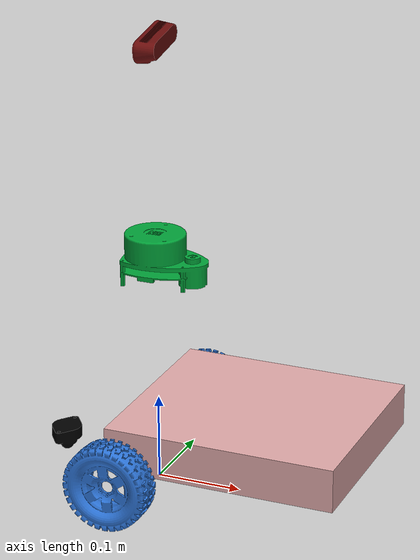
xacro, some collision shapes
<?xml version="1.0"?>
<robot name="my_amr" xmlns:xacro="http://ros.org/wiki/xacro">
  <xacro:arg name="sim" default="false" />
  <xacro:include filename="$(find linorobot2_description)/urdf/my_amr_properties.urdf.xacro" />
  <xacro:include filename="$(find linorobot2_description)/urdf/mech/base.urdf.xacro" />
  <xacro:include filename="$(find linorobot2_description)/urdf/mech/wheel.urdf.xacro" />
  <xacro:include filename="$(find linorobot2_description)/urdf/mech/caster_wheel.urdf.xacro" />
  <xacro:include filename="$(find linorobot2_description)/urdf/sensors/plugins.urdf.xacro" />
  <xacro:include filename="$(find linorobot2_description)/urdf/sensors/imu.urdf.xacro" />
  <xacro:include filename="$(find linorobot2_description)/urdf/sensors/laser.urdf.xacro" />
  <xacro:include filename="$(find linorobot2_description)/urdf/sensors/depth_sensor.urdf.xacro" />
  <xacro:include filename="$(find linorobot2_description)/urdf/controllers/diff_drive.urdf.xacro" />

  <xacro:base
    length="${base_length}"
    width="${base_width}"
    height="${base_height}"
    mass="${base_mass}"
    wheel_radius="${wheel_radius}"
    wheel_pos_z="${wheel_pos_z}"
    mesh_file="${base_mesh_file}"
  />

  <xacro:wheel
    side="left"
    radius="${wheel_radius}"
    width="${wheel_width}"
    pos_x="${wheel_pos_x}"
    pos_y="${wheel_pos_y}"
    pos_z="${wheel_pos_z}"
    mass="${wheel_mass}"
    mesh_file="${wheel_left_mesh_file}"
  />

  <xacro:wheel
    side="right"
    radius="${wheel_radius}"
    width="${wheel_width}"
    pos_x="${wheel_pos_x}"
    pos_y="${-wheel_pos_y}"
    pos_z="${wheel_pos_z}"
    mass="${wheel_mass}"
    mesh_file="${wheel_right_mesh_file}"
  />

  <xacro:if value="${front_caster_wheel}">
    <xacro:caster_wheel
      side="front"
      mass="0.020117"
      base_length="${base_length}"
      wheel_radius="${wheel_radius}"
      wheel_pos_z="${wheel_pos_z}"
      mesh_file="${caster_front_mesh_file}"
      pos_x_override="0.119842"
      pos_z_override="-0.073"
      radius_override="0.012"
    />
  </xacro:if>

  <xacro:if value="${rear_caster_wheel}">
    <xacro:caster_wheel
      side="rear"
      mass="0.020117"
      base_length="${base_length}"
      wheel_radius="${wheel_radius}"
      wheel_pos_z="${wheel_pos_z}"
      mesh_file="${caster_rear_mesh_file}"
      pos_x_override="-0.119842"
      pos_z_override="-0.073"
      radius_override="0.012"
    />
  </xacro:if>

  <xacro:imu mesh_file="${imu_mesh_file}" xyz="${imu_xyz}" />

  <!-- min_range=0.15: the two camera mast posts stand 12-15 cm from the lidar on
       each side; beams within 15 cm always hit them, not real obstacles. -->
  <xacro:laser
    update_rate="10"
    ray_count="360"
    min_angle="-3.1416"
    max_angle="3.1416"
    min_range="0.15"
    max_range="12.0"
    frame_id="lidar_link"
    topic_name="scan"
    mesh_file="${lidar_mesh_file}"
  >
    <xacro:insert_block name="laser_pose" />
  </xacro:laser>

  <xacro:depth_sensor mesh_file="${camera_mesh_file}">
    <xacro:insert_block name="depth_sensor_pose" />
  </xacro:depth_sensor>

  <xacro:diff_drive_controller
    wheel_separation="${wheel_pos_y * 2}"
    wheel_radius="${wheel_radius}"
  />
</robot>

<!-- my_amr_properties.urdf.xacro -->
<robot xmlns:xacro="http://ros.org/wiki/xacro">
  <!-- Dimensions and offsets taken from the real robot's original description. -->
  <xacro:property name="base_length" value="0.27" />
  <xacro:property name="base_width" value="0.24" />
  <xacro:property name="base_height" value="0.05" />
  <xacro:property name="base_mass" value="1.751285" />
  <xacro:property name="base_mesh_file" value="file://$(find linorobot2_description)/meshes/my_amr/base_link.STL" />

  <xacro:property name="wheel_radius" value="0.05" />
  <xacro:property name="wheel_width" value="0.032" />
  <xacro:property name="wheel_pos_x" value="0.0" />
  <xacro:property name="wheel_pos_y" value="0.1415" />
  <!-- wheel_pos_z derived from base_footprint_joint z = 0.085 and the base macro
       formula origin_z = wheel_radius - wheel_pos_z => wheel_pos_z = wheel_radius - 0.085 -->
  <xacro:property name="wheel_pos_z" value="-0.035" />
  <xacro:property name="wheel_mass" value="0.183802" />
  <xacro:property name="wheel_torque" value="12.0" />
  <xacro:property name="front_caster_wheel" value="true" />
  <xacro:property name="rear_caster_wheel" value="true" />

  <xacro:property name="wheel_left_mesh_file" value="file://$(find linorobot2_description)/meshes/my_amr/wheel_left.STL" />
  <xacro:property name="wheel_right_mesh_file" value="file://$(find linorobot2_description)/meshes/my_amr/wheel_right.STL" />
  <xacro:property name="caster_front_mesh_file" value="file://$(find linorobot2_description)/meshes/my_amr/caster_front.STL" />
  <xacro:property name="caster_rear_mesh_file" value="file://$(find linorobot2_description)/meshes/my_amr/caster_rear.STL" />

  <xacro:property name="imu_mesh_file" value="file://$(find linorobot2_description)/meshes/my_amr/imu_link.STL" />
  <xacro:property name="imu_xyz" value="0.091328 0.002047 0.017379" />

  <xacro:property name="lidar_mesh_file" value="file://$(find linorobot2_description)/meshes/my_amr/lidar_link.STL" />
  <xacro:property name="laser_pose">
    <origin xyz="-0.002108 0 0.2167" rpy="0 0 0"/>
  </xacro:property>

  <xacro:property name="camera_mesh_file" value="file://$(find linorobot2_description)/meshes/my_amr/camera_link.STL" />
  <xacro:property name="depth_sensor_pose">
    <origin xyz="0.011350 0.001871 0.438178" rpy="0 0 0"/>
  </xacro:property>
</robot>

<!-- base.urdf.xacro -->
<robot xmlns:xacro="http://ros.org/wiki/xacro">
  <xacro:macro name="base" params="length width height mass wheel_radius wheel_pos_z mesh_file">
    <link name="base_footprint"/>

    <link name="base_link">
      <visual>
        <origin xyz="${(length/2) - 0.1327} 0 0" rpy="0 0 0"/>
        <geometry>
          <xacro:if value="${mesh_file == ''}">
            <box size="${length} ${width} ${height}"/>
          </xacro:if>
          <xacro:unless value="${mesh_file == ''}">
            <mesh filename="${mesh_file}" scale="1 1 1"/>
          </xacro:unless>
        </geometry>
        <material name="yellow">
          <color rgba="0.8784 0.6627 0.6627 1.0"/>
        </material>
      </visual>

      <collision>
        <origin xyz="${(length/2) - 0.0127} 0 0" rpy="0 0 0"/>
        <geometry>
          <box size="${length} ${width} ${height}"/>
        </geometry>
      </collision>

      <inertial>
        <origin xyz="0 0 0" rpy="0 0 0"/>
        <mass value="${mass}"/>
        <inertia ixx="${(1/12) * mass * ((width  * width)  + (height * height))}" ixy="0.0" ixz="0.0"
                 iyy="${(1/12) * mass * ((length * length) + (height * height))}" iyz="0.0"
                 izz="${(1/12) * mass * ((length * length) + (width  * width))}"/>
      </inertial>
    </link>

    <gazebo reference="base_link">
      <visual>
        <material>
          <ambient>0.8392 0.6314 0.0 1.0</ambient>
          <diffuse>0.8392 0.6314 0.0 1.0</diffuse>
          <specular>0.99 0.99 0.99 1.0</specular>
          <emissive>0.0 0.0 0.0 0.0</emissive>
        </material>
      </visual>
    </gazebo>

    <joint name="base_to_footprint" type="fixed">
      <parent link="base_footprint"/>
      <child link="base_link"/>
      <origin xyz="0 0 ${wheel_radius - wheel_pos_z}" rpy="0 0 0"/>
    </joint>
  </xacro:macro>
</robot>

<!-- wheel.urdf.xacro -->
<robot xmlns:xacro="http://ros.org/wiki/xacro">
  <xacro:macro name="wheel" params="side radius width pos_x pos_y pos_z mass mesh_file">
    <link name="${side}_wheel_link">
      <visual>
        <xacro:if value="${mesh_file == ''}">
          <!-- The cylinder primitive is along Z; rotate 90 deg about X to match the wheel's Y axis. -->
          <origin xyz="0 0 0" rpy="${pi/2} 0 0"/>
          <geometry>
            <cylinder radius="${radius}" length="${width}"/>
          </geometry>
        </xacro:if>
        <xacro:unless value="${mesh_file == ''}">
          <!-- The real mesh is already aligned with the joint's Y axis; no extra rotation. -->
          <origin xyz="0 0 0" rpy="0 0 0"/>
          <geometry>
            <mesh filename="${mesh_file}" scale="1 1 1"/>
          </geometry>
        </xacro:unless>
        <material name="blue">
            <color rgba="0.1764 0.4588 0.8509 1.0"/>
        </material>
      </visual>
      <collision>
        <origin xyz="0 0 0" rpy="${pi/2} 0 0"/>
        <geometry>
          <cylinder radius="${radius}" length="${width}"/>
        </geometry>
      </collision>

      <inertial>
        <origin xyz="0 0 0" rpy="0 0 0"/>
        <mass value="${mass}"/>
        <inertia ixx="${(2/5) * mass * (radius * radius)}" ixy="0" ixz="0"
                 iyy="${(2/5) * mass * (radius * radius)}" iyz="0"
                 izz="${(2/5) * mass * (radius * radius)}" />
      </inertial>
    </link>
    <gazebo reference="${side}_wheel_link">
      <visual>
        <material>
          <ambient>0.1764 0.4588 0.8509 1.0</ambient>
          <diffuse>0.1764 0.4588 0.8509 1.0</diffuse>
          <specular>0.1764 0.4588 0.8509 1.0</specular>
          <emissive>0.0 0.0 0.0 0.0</emissive>
        </material>
      </visual>
    </gazebo>
    <joint name="${side}_wheel_joint" type="continuous">
      <axis xyz="0 1 0" />
      <parent link="base_link"/>
      <child link="${side}_wheel_link"/>
      <origin xyz="${pos_x} ${pos_y} ${pos_z}" rpy="0 0 0"/>
    </joint>
  </xacro:macro>
</robot>

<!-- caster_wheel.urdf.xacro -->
<robot xmlns:xacro="http://ros.org/wiki/xacro">
  <xacro:macro name="caster_wheel" params="side mass base_length wheel_radius wheel_pos_z mesh_file:='' pos_x_override:='' pos_z_override:='' radius_override:=''">
    <xacro:if value="${radius_override == ''}">
      <xacro:property name="caster_wheel_radius" value="${(wheel_radius - wheel_pos_z) / 2}" />
    </xacro:if>
    <xacro:unless value="${radius_override == ''}">
      <xacro:property name="caster_wheel_radius" value="${radius_override}" />
    </xacro:unless>

    <xacro:if value="${pos_x_override == ''}">
      <xacro:if value="${side == 'front'}">
          <xacro:property name="caster_wheel_x" value="${(base_length / 2) - caster_wheel_radius}" />
      </xacro:if>
      <xacro:if value="${side == 'rear'}">
          <xacro:property name="caster_wheel_x" value="${-(base_length / 2) + caster_wheel_radius}" />
      </xacro:if>
    </xacro:if>
    <xacro:unless value="${pos_x_override == ''}">
      <xacro:property name="caster_wheel_x" value="${pos_x_override}" />
    </xacro:unless>

    <xacro:if value="${pos_z_override == ''}">
      <xacro:property name="caster_wheel_z" value="${-caster_wheel_radius}" />
    </xacro:if>
    <xacro:unless value="${pos_z_override == ''}">
      <xacro:property name="caster_wheel_z" value="${pos_z_override}" />
    </xacro:unless>

    <link name="${side}_caster_wheel_link">
      <visual>
        <origin xyz="0 0 0" rpy="0 0 0"/>
        <geometry>
          <xacro:if value="${mesh_file == ''}">
            <sphere radius="${caster_wheel_radius}" />
          </xacro:if>
          <xacro:unless value="${mesh_file == ''}">
            <mesh filename="${mesh_file}" scale="1 1 1"/>
          </xacro:unless>
        </geometry>
        <material name="black">
            <color rgba="0.0 0.0 0.0 1.0"/>
        </material>
      </visual>

      <collision>
        <origin xyz="0 0 0" rpy="0 0 0"/>
        <geometry>
          <sphere radius="${caster_wheel_radius}" />
        </geometry>
      </collision>

      <inertial>
        <origin xyz="0 0 0" rpy="0 0 0"/>
        <mass value="${mass}"/>
        <inertia ixx="${(2/5) * mass * (caster_wheel_radius * caster_wheel_radius)}" ixy="0" ixz="0"
                 iyy="${(2/5) * mass * (caster_wheel_radius * caster_wheel_radius)}" iyz="0"
                 izz="${(2/5) * mass * (caster_wheel_radius * caster_wheel_radius)}" />
      </inertial>
    </link>

    <gazebo reference="${side}_caster_wheel_link">
        <mu1>0.01</mu1>
        <mu2>0.01</mu2>
    </gazebo>

    <joint name="${side}_caster_wheel_joint" type="fixed">
      <parent link="base_link"/>
      <child link="${side}_caster_wheel_link"/>
      <origin xyz="${caster_wheel_x} 0 ${caster_wheel_z}" rpy="0 0 0"/>
    </joint>
  </xacro:macro>
</robot>

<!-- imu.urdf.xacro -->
<robot xmlns:xacro="http://ros.org/wiki/xacro">
  <xacro:macro name="imu" params="mesh_file:='' xyz:='0 0 0' rpy:='0 0 0'">
    <link name="imu_link">
      <xacro:unless value="${mesh_file == ''}">
        <visual>
          <origin xyz="0 0 0" rpy="0 0 0"/>
          <geometry>
            <mesh filename="${mesh_file}" scale="1 1 1"/>
          </geometry>
          <material name="green">
            <color rgba="0.15 0.55 0.2 1.0"/>
          </material>
        </visual>
      </xacro:unless>
    </link>

    <joint name="imu_to_base_link" type="fixed">
      <parent link="base_link"/>
      <child link="imu_link"/>
      <origin xyz="${xyz}" rpy="${rpy}"/>
    </joint>

    <gazebo>
      <plugin filename="gz-sim-imu-system" name="gz::sim::systems::Imu">
      </plugin>
    </gazebo>

    <gazebo reference="imu_link">
      <sensor name="imu_sensor" type="imu">
        <topic>imu/data</topic>
        <update_rate>50</update_rate>
        <always_on>true</always_on>
        <visualize>true</visualize>
      </sensor>
    </gazebo>
  </xacro:macro>
</robot>

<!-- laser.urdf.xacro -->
<robot xmlns:xacro="http://ros.org/wiki/xacro">
  <xacro:property name="M_PI" value="3.1415926535897931" />
  <xacro:macro name="laser" params="*origin update_rate ray_count min_angle max_angle min_range max_range frame_id topic_name mesh_file:=''">
    <link name="${frame_id}">
      <visual>
        <xacro:if value="${mesh_file == ''}">
          <origin xyz="0 0 -0.05" rpy="0 0 0"/>
          <geometry>
            <cylinder radius="0.0375" length="0.05"/>
          </geometry>
        </xacro:if>
        <xacro:unless value="${mesh_file == ''}">
          <origin xyz="0 0 0" rpy="0 0 0"/>
          <geometry>
            <mesh filename="${mesh_file}" scale="1 1 1"/>
          </geometry>
        </xacro:unless>
        <material name="green">
            <color rgba="0.003 0.639 0.223 1.0"/>
        </material>
      </visual>
      <collision>
        <origin xyz="0 0 -0.05" rpy="0 0 0"/>
        <geometry>
          <cylinder radius="0.0375" length="0.05"/>
        </geometry>
      </collision>

      <inertial>
        <origin xyz="0 0 0" rpy="0 0 0"/>
        <mass value="0.1"/>
        <inertia ixx="${(2/5) * 0.1 * (0.0375 * 0.0375)}" ixy="0" ixz="0"
                 iyy="${(2/5) * 0.1 * (0.0375 * 0.0375)}" iyz="0"
                 izz="${(2/5) * 0.1 * (0.0375 * 0.0375)}" />
      </inertial>
    </link>

    <gazebo reference="${frame_id}">
      <visual>
        <material>
          <ambient>0.003 0.639 0.223 1.0</ambient>
          <diffuse>0.003 0.639 0.223 1.0</diffuse>
          <specular>0.003 0.639 0.223 1.0</specular>
          <emissive>0.0 0.0 0.0 0.0</emissive>
        </material>
      </visual>
    </gazebo>

    <joint name="${frame_id}_to_base_link" type="fixed">
      <parent link="base_link"/>
      <child link="${frame_id}"/>
      <xacro:insert_block name="origin" />
    </joint>

    <gazebo reference="${frame_id}">
      <sensor name="gpu_lidar" type="gpu_lidar">
        <topic>${topic_name}</topic>
        <gz_frame_id>${frame_id}</gz_frame_id>
        <update_rate>${update_rate}</update_rate>
        <always_on>true</always_on>
        <visualize>true</visualize>
        <lidar>
          <scan>
            <horizontal>
              <samples>${ray_count}</samples>
              <resolution>1</resolution>
              <min_angle>${min_angle}</min_angle>
              <max_angle>${max_angle}</max_angle>
            </horizontal>
            <vertical>
              <samples>1</samples>
              <resolution>1</resolution>
              <min_angle>0.0</min_angle>
              <max_angle>0.0</max_angle>
            </vertical>
          </scan>
          <range>
            <min>${min_range}</min>
            <max>${max_range}</max>
            <resolution>0.01</resolution>
          </range>
        </lidar>
      </sensor>
    </gazebo>
  </xacro:macro>
</robot>

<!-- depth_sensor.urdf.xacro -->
<robot xmlns:xacro="http://ros.org/wiki/xacro">
  <xacro:property name="M_PI" value="3.1415926535897931" />
  <xacro:macro name="depth_sensor" params="*origin mesh_file:=''">
    <link name="camera_link">
      <visual>
        <origin xyz="0 0 0" rpy="0 0 0"/>
        <geometry>
          <xacro:if value="${mesh_file == ''}">
            <box size="0.030 0.124 0.030"/>
          </xacro:if>
          <xacro:unless value="${mesh_file == ''}">
            <mesh filename="${mesh_file}" scale="1 1 1"/>
          </xacro:unless>
        </geometry>
        <material name="red">
          <color rgba="0.416 0.051 0.047 1.0"/>
        </material>
      </visual>

      <collision>
        <origin xyz="0 0 0" rpy="0 0 0"/>
        <geometry>
          <box size="0.030 0.124 0.030"/>
        </geometry>
      </collision>

      <inertial>
        <origin xyz="0 0 0" rpy="0 0 0"/>
        <mass value="0.135"/>
        <inertia ixx="${(1/12) * 0.135 * ((0.124  * 0.124)  + (0.030 * 0.030))}" ixy="0.0" ixz="0.0"
                 iyy="${(1/12) * 0.135 * ((0.030 * 0.030) + (0.030 * 0.030))}" iyz="0.0"
                 izz="${(1/12) * 0.135 * ((0.030 * 0.030) + (0.124  * 0.124))}"/>
      </inertial>
    </link>

    <gazebo reference="camera_link">
      <visual>
        <material>
          <ambient>0.416 0.051 0.047 1.0</ambient>
          <diffuse>0.416 0.051 0.047 1.0</diffuse>
          <specular>0.416 0.051 0.047 1.0</specular>
          <emissive>0.416 0.051 0.047 1.0</emissive>
        </material>
      </visual>
    </gazebo>rgb(213,28,40)

    <joint name="camera_to_base_link" type="fixed">
      <parent link="base_link"/>
      <child link="camera_link"/>
      <xacro:insert_block name="origin" />
    </joint>

<link name="camera_depth_link"/>
    <joint name="camera_depth_joint" type="fixed">
      <origin xyz="0 0 0" rpy="${-pi/2} 0 ${-pi/2}"/>
      <parent link="camera_link"/>
      <child link="camera_depth_link"/>
    </joint>

    <gazebo reference="camera_link">
      <sensor name="camera" type="rgbd_camera">
        <topic>camera</topic>
        <update_rate>30.0</update_rate>
        <always_on>true</always_on>
        <visualize>true</visualize>
        <camera>
          <optical_frame_id>camera_depth_link</optical_frame_id>
          <horizontal_fov>1.50098</horizontal_fov>
          <image>
            <width>640</width>
            <height>480</height>
            <format>R8G8B8</format>
          </image>
          <clip>
            <near>0.3</near>
            <far>100</far>
          </clip>
        </camera>
      </sensor>
    </gazebo>
  </xacro:macro>
</robot>
